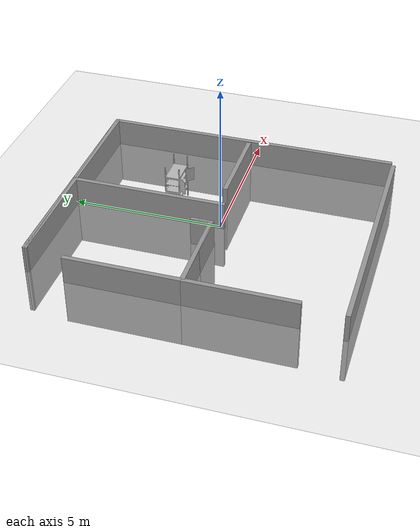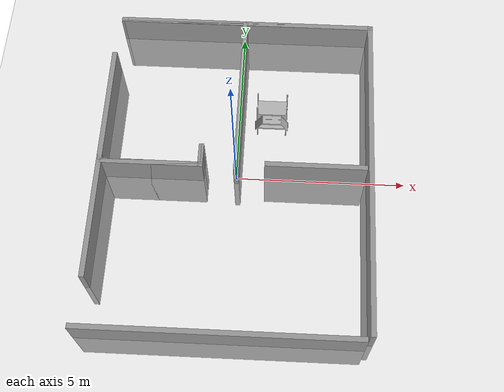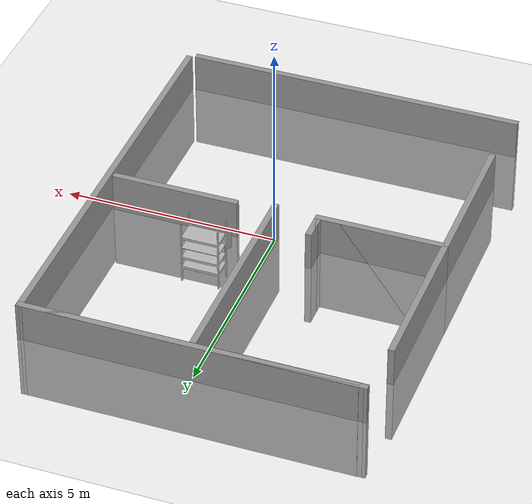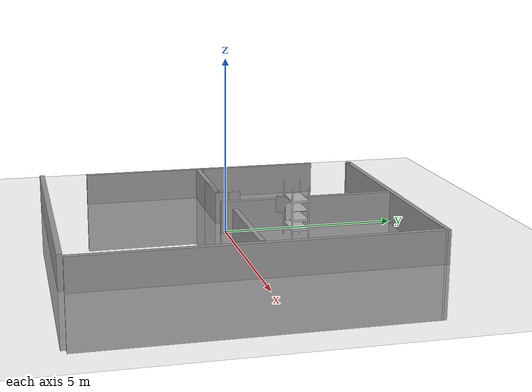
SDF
<sdf version="1.7">
 <world name="default">
  <light name="sun" type="directional">
   <pose>0 0 10 0 -0 0</pose>
   <diffuse>0.8 0.8 0.8 1</diffuse>
   <specular>0.2 0.2 0.2 1</specular>
   <attenuation>
    <range>1000</range>
    <constant>0.9</constant>
    <linear>0.01</linear>
    <quadratic>0.001</quadratic>
   </attenuation>
   <direction>-0.5 0.1 -0.9</direction>
   <spot><inner_angle>0</inner_angle><outer_angle>0</outer_angle><falloff>0</falloff></spot>
  </light>
  <model name="ground_plane">
   <static>1</static>
   <link name="link">
    <collision name="collision">
     <geometry><plane><normal>0 0 1</normal><size>100 100</size></plane></geometry>
     <surface><friction><ode><mu>100</mu><mu2>50</mu2></ode></friction></surface>
    </collision>
    <visual name="visual">
     <cast_shadows>0</cast_shadows>
     <geometry><plane><normal>0 0 1</normal><size>100 100</size></plane></geometry>
     <material>
      <script><uri>file://media/materials/scripts/gazebo.material</uri><name>Gazebo/Grey</name></script>
     </material>
    </visual>
   </link>
  </model>
  <gravity>0 0 -9.8</gravity>
  <magnetic_field>6e-06 2.3e-05 -4.2e-05</magnetic_field>
  <atmosphere type="adiabatic"/>
  <physics type="ode">
   <max_step_size>0.001</max_step_size>
   <real_time_factor>1</real_time_factor>
   <real_time_update_rate>1000</real_time_update_rate>
  </physics>
  <scene><ambient>0.4 0.4 0.4 1</ambient><background>0.7 0.7 0.7 1</background><shadows>1</shadows></scene>
  <spherical_coordinates>
   <surface_model>EARTH_WGS84</surface_model>
   <latitude_deg>0</latitude_deg>
   <longitude_deg>0</longitude_deg>
   <elevation>0</elevation>
   <heading_deg>0</heading_deg>
  </spherical_coordinates>
  <model name="rc2025_0">
   <pose>-0.074867 0.03726 -1.57742 0 -0 0</pose>
   <link name="Wall_44">
    <collision name="Wall_44_Collision">
     <geometry><box><size>7.75 0.15 2.5</size></box></geometry>
     <pose>0 0 1.25 0 -0 0</pose>
    </collision>
    <visual name="Wall_44_Visual">
     <pose>0 0 1.25 0 -0 0</pose>
     <geometry><box><size>7.75 0.15 2.5</size></box></geometry>
     <material>
      <script><uri>file://media/materials/scripts/gazebo.material</uri><name>Gazebo/Grey</name></script>
      <ambient>1 1 1 1</ambient>
     </material>
     <meta><layer>0</layer></meta>
    </visual>
    <pose>0.23198 4.99895 0 0 -0 3.14159</pose>
   </link>
   <link name="Wall_47">
    <collision name="Wall_47_Collision">
     <geometry><box><size>4 0.15 2.5</size></box></geometry>
     <pose>0 0 1.25 0 -0 0</pose>
    </collision>
    <visual name="Wall_47_Visual">
     <pose>0 0 1.25 0 -0 0</pose>
     <geometry><box><size>4 0.15 2.5</size></box></geometry>
     <material>
      <script><uri>file://media/materials/scripts/gazebo.material</uri><name>Gazebo/Grey</name></script>
      <ambient>1 1 1 1</ambient>
     </material>
     <meta><layer>0</layer></meta>
    </visual>
    <pose>-1.83093 4.98956 0 0 -0 3.14159</pose>
   </link>
   <link name="Wall_48">
    <collision name="Wall_48_Collision">
     <geometry><box><size>7.93791 0.15 2.5</size></box></geometry>
     <pose>0 0 1.25 0 -0 0</pose>
    </collision>
    <visual name="Wall_48_Visual">
     <pose>0 0 1.25 0 -0 0</pose>
     <geometry><box><size>7.93791 0.15 2.5</size></box></geometry>
     <material>
      <script><uri>file://media/materials/scripts/gazebo.material</uri><name>Gazebo/Grey</name></script>
      <ambient>1 1 1 1</ambient>
     </material>
     <meta><layer>0</layer></meta>
    </visual>
    <pose>0.138025 4.99426 0 0 -0 0.001206</pose>
   </link>
   <link name="Wall_50">
    <collision name="Wall_50_Collision">
     <geometry><box><size>5.25 0.15 2.5</size></box></geometry>
     <pose>0 0 1.25 0 -0 0</pose>
    </collision>
    <visual name="Wall_50_Visual">
     <pose>0 0 1.25 0 -0 0</pose>
     <geometry><box><size>5.25 0.15 2.5</size></box></geometry>
     <material>
      <script><uri>file://media/materials/scripts/gazebo.material</uri><name>Gazebo/Grey</name></script>
      <ambient>1 1 1 1</ambient>
     </material>
     <meta><layer>0</layer></meta>
    </visual>
    <pose>0.094071 2.43956 0 0 -0 -1.5708</pose>
   </link>
   <link name="Wall_52">
    <collision name="Wall_52_Collision">
     <geometry><box><size>0.75 0.15 2.5</size></box></geometry>
     <pose>0 0 1.25 0 -0 0</pose>
    </collision>
    <visual name="Wall_52_Visual">
     <pose>0 0 1.25 0 -0 0</pose>
     <geometry><box><size>0.75 0.15 2.5</size></box></geometry>
     <material>
      <script><uri>file://media/materials/scripts/gazebo.material</uri><name>Gazebo/Grey</name></script>
      <ambient>1 1 1 1</ambient>
     </material>
     <meta><layer>0</layer></meta>
    </visual>
    <pose>-0.954949 0.246332 0 0 -0 -1.5708</pose>
   </link>
   <link name="Wall_53">
    <collision name="Wall_53_Collision">
     <geometry><box><size>3 0.15 2.5</size></box></geometry>
     <pose>0 0 1.25 0 -0 0</pose>
    </collision>
    <visual name="Wall_53_Visual">
     <pose>0 0 1.25 0 -0 0</pose>
     <geometry><box><size>3 0.15 2.5</size></box></geometry>
     <material>
      <script><uri>file://media/materials/scripts/gazebo.material</uri><name>Gazebo/Grey</name></script>
      <ambient>1 1 1 1</ambient>
     </material>
     <meta><layer>0</layer></meta>
    </visual>
    <pose>-2.37995 -0.053668 0 0 -0 3.14159</pose>
   </link>
   <link name="Wall_54">
    <collision name="Wall_54_Collision">
     <geometry><box><size>3 0.15 2.5</size></box></geometry>
     <pose>0 0 1.25 0 -0 0</pose>
    </collision>
    <visual name="Wall_54_Visual">
     <pose>0 0 1.25 0 -0 0</pose>
     <geometry><box><size>3 0.15 2.5</size></box></geometry>
     <material>
      <script><uri>file://media/materials/scripts/gazebo.material</uri><name>Gazebo/Grey</name></script>
      <ambient>1 1 1 1</ambient>
     </material>
     <meta><layer>0</layer></meta>
    </visual>
    <pose>-2.37995 -0.053668 0 0 -0 0</pose>
   </link>
   <link name="Wall_55">
    <collision name="Wall_55_Collision">
     <geometry><box><size>0.75 0.15 2.5</size></box></geometry>
     <pose>0 0 1.25 0 -0 0</pose>
    </collision>
    <visual name="Wall_55_Visual">
     <pose>0 0 1.25 0 -0 0</pose>
     <geometry><box><size>0.75 0.15 2.5</size></box></geometry>
     <material>
      <script><uri>file://media/materials/scripts/gazebo.material</uri><name>Gazebo/Grey</name></script>
      <ambient>1 1 1 1</ambient>
     </material>
     <meta><layer>0</layer></meta>
    </visual>
    <pose>-0.954949 0.246332 0 0 -0 1.5708</pose>
   </link>
   <link name="Wall_57">
    <collision name="Wall_57_Collision">
     <geometry><box><size>3.75 0.15 2.5</size></box></geometry>
     <pose>0 0 1.25 0 -0 0</pose>
    </collision>
    <visual name="Wall_57_Visual">
     <pose>0 0 1.25 0 -0 0</pose>
     <geometry><box><size>3.75 0.15 2.5</size></box></geometry>
     <material>
      <script><uri>file://media/materials/scripts/gazebo.material</uri><name>Gazebo/Grey</name></script>
      <ambient>1 1 1 1</ambient>
     </material>
     <meta><layer>0</layer></meta>
    </visual>
    <pose>-3.90495 1.84633 0 0 -0 -1.5708</pose>
   </link>
   <link name="Wall_59">
    <collision name="Wall_59_Collision">
     <geometry><box><size>3.75 0.15 2.5</size></box></geometry>
     <pose>0 0 1.25 0 -0 0</pose>
    </collision>
    <visual name="Wall_59_Visual">
     <pose>0 0 1.25 0 -0 0</pose>
     <geometry><box><size>3.75 0.15 2.5</size></box></geometry>
     <material>
      <script><uri>file://media/materials/scripts/gazebo.material</uri><name>Gazebo/Grey</name></script>
      <ambient>1 1 1 1</ambient>
     </material>
     <meta><layer>0</layer></meta>
    </visual>
    <pose>-3.90495 -1.75367 0 0 -0 -1.5708</pose>
   </link>
   <link name="Wall_61">
    <collision name="Wall_61_Collision">
     <geometry><box><size>8 0.15 2.5</size></box></geometry>
     <pose>0 0 1.25 0 -0 0</pose>
    </collision>
    <visual name="Wall_61_Visual">
     <pose>0 0 1.25 0 -0 0</pose>
     <geometry><box><size>8 0.15 2.5</size></box></geometry>
     <material>
      <script><uri>file://media/materials/scripts/gazebo.material</uri><name>Gazebo/Grey</name></script>
      <ambient>1 1 1 1</ambient>
     </material>
     <meta><layer>0</layer></meta>
    </visual>
    <pose>-0.10707 -4.99904 0 0 -0 0</pose>
   </link>
   <link name="Wall_63">
    <collision name="Wall_63_Collision">
     <geometry><box><size>10 0.15 2.5</size></box></geometry>
     <pose>0 0 1.25 0 -0 0</pose>
    </collision>
    <visual name="Wall_63_Visual">
     <pose>0 0 1.25 0 -0 0</pose>
     <geometry><box><size>10 0.15 2.5</size></box></geometry>
     <material>
      <script><uri>file://media/materials/scripts/gazebo.material</uri><name>Gazebo/Grey</name></script>
      <ambient>1 1 1 1</ambient>
     </material>
     <meta><layer>0</layer></meta>
    </visual>
    <pose>4.03198 0.073953 0 0 -0 -1.5708</pose>
   </link>
   <link name="Wall_65">
    <collision name="Wall_65_Collision">
     <geometry><box><size>3 0.15 2.5</size></box></geometry>
     <pose>0 0 1.25 0 -0 0</pose>
    </collision>
    <visual name="Wall_65_Visual">
     <pose>0 0 1.25 0 -0 0</pose>
     <geometry><box><size>3 0.15 2.5</size></box></geometry>
     <material>
      <script><uri>file://media/materials/scripts/gazebo.material</uri><name>Gazebo/Grey</name></script>
      <ambient>1 1 1 1</ambient>
     </material>
     <meta><layer>0</layer></meta>
    </visual>
    <pose>2.42037 0.054994 0 0 -0 0</pose>
   </link>
   <static>1</static>
  </model>
  <model name="rc2025_shelf">
   <static>1</static>
   <link name="link">
    <visual name="visual">
     <geometry><mesh><uri>model://rc2025_shelf/meshes/RC2025_shelf_doors.dae</uri></mesh></geometry>
    </visual>
    <collision name="collision">
     <geometry><mesh><uri>model://rc2025_shelf/meshes/RC2025_shelf_doors.dae</uri></mesh></geometry>
    </collision>
   </link>
   <pose>0.995631 1.80397 0 0 -0 0</pose>
  </model>
 </world>
</sdf>
